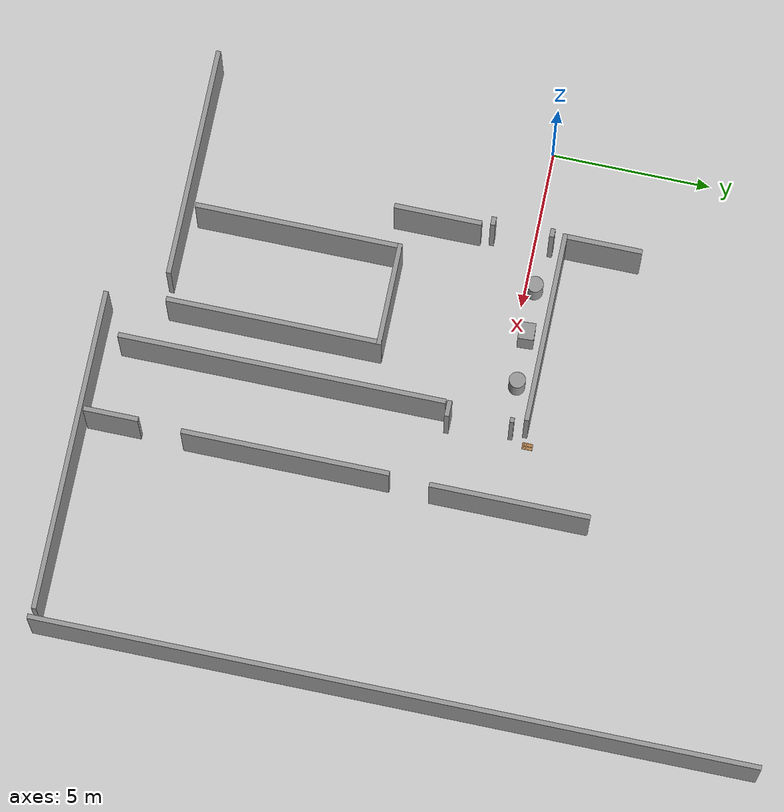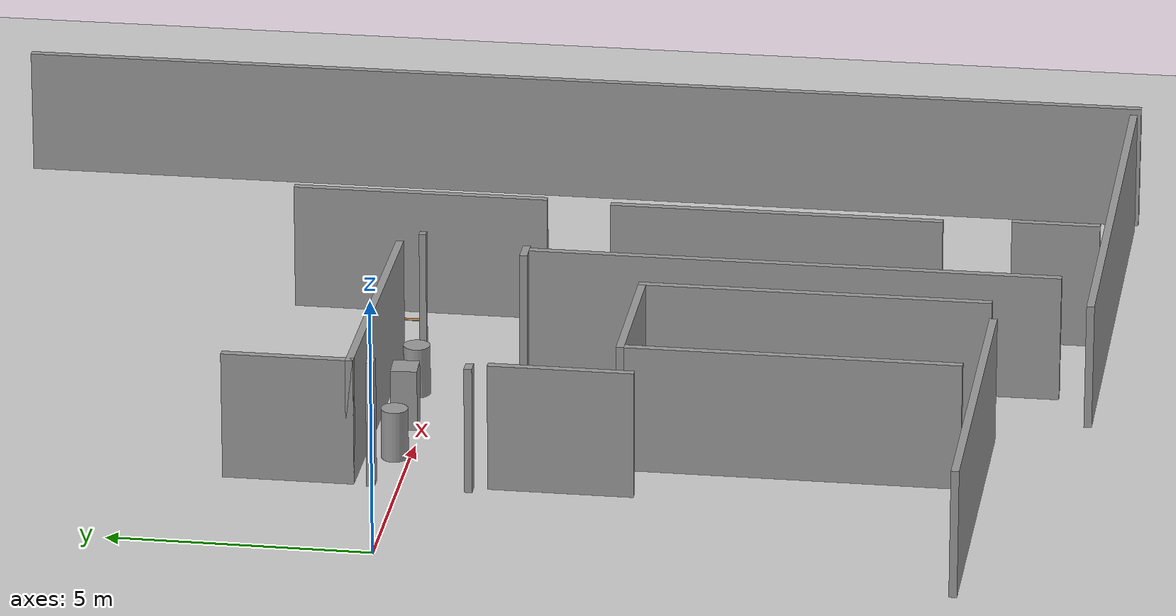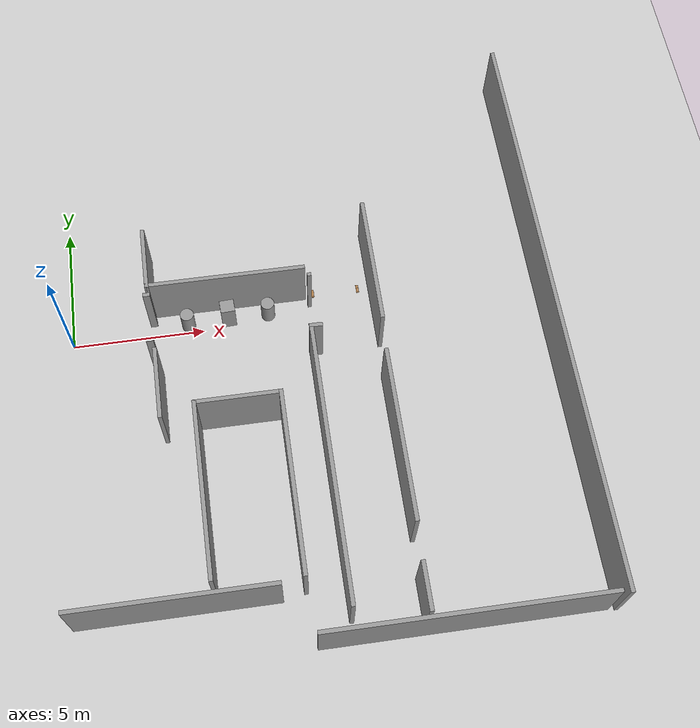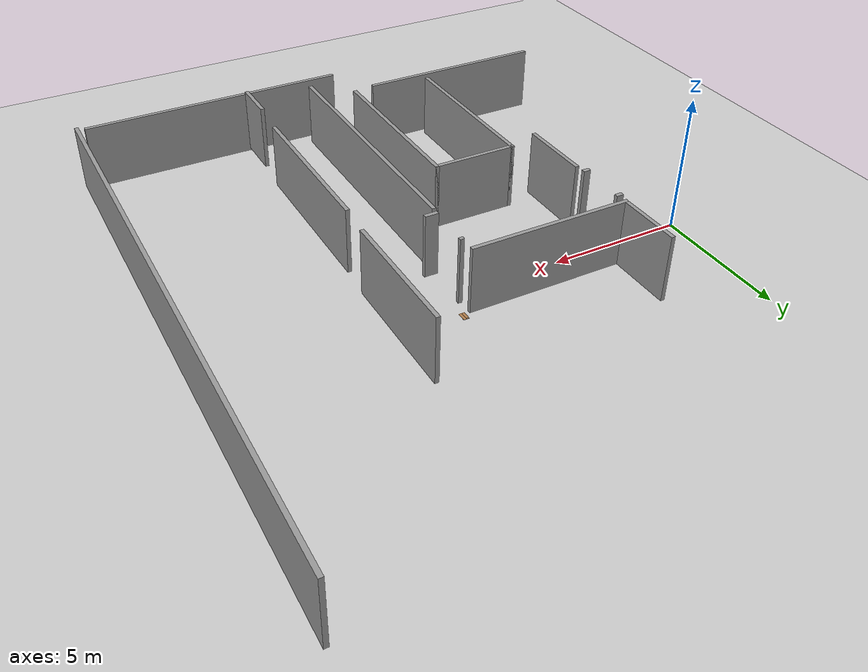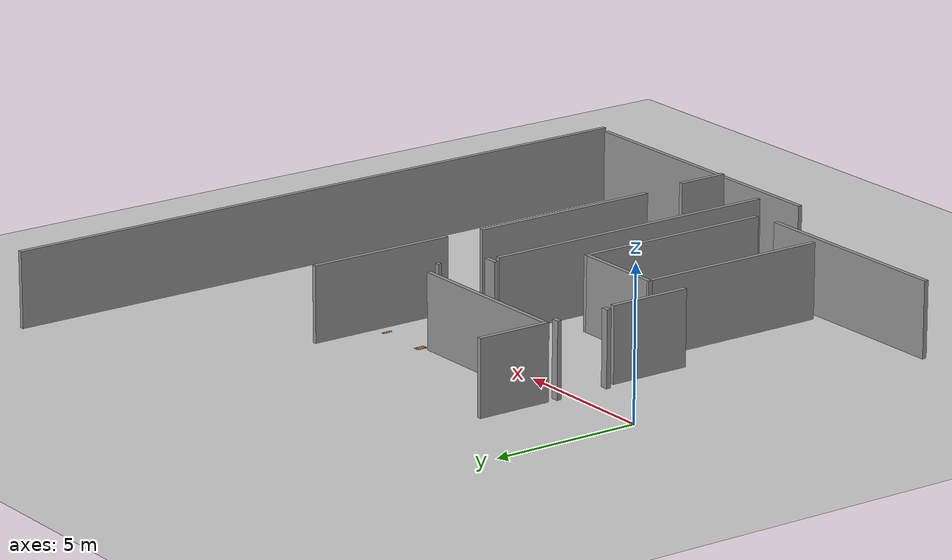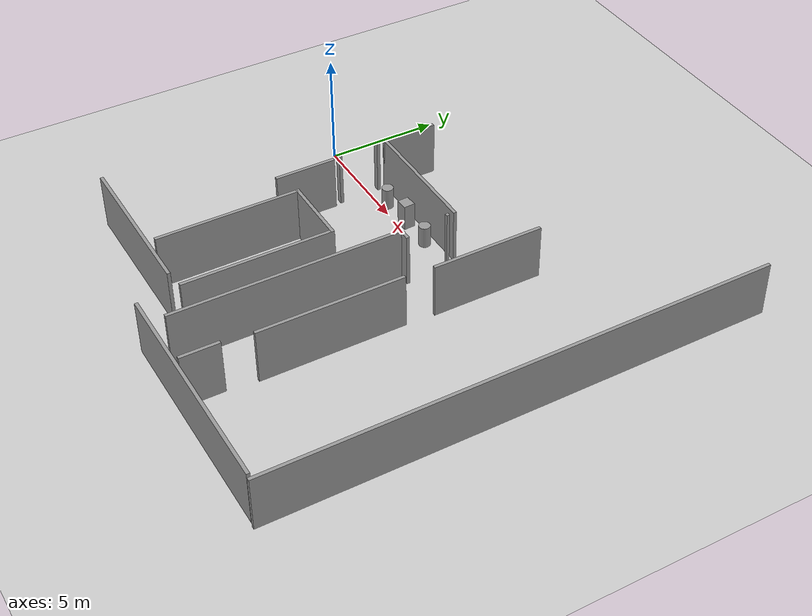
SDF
<sdf version="1.7">
 <world name="default">
  <model name="ground_plane">
   <static>1</static>
   <link name="link">
    <collision name="collision">
     <geometry><plane><normal>0 0 1</normal><size>100 100</size></plane></geometry>
     <surface>
      <contact><collide_bitmask>65535</collide_bitmask></contact>
      <friction><ode><mu>100</mu><mu2>50</mu2></ode></friction>
     </surface>
    </collision>
    <visual name="visual">
     <cast_shadows>0</cast_shadows>
     <geometry><plane><normal>0 0 1</normal><size>100 100</size></plane></geometry>
     <material>
      <script><uri>file://media/materials/scripts/gazebo.material</uri><name>Gazebo/Grey</name></script>
     </material>
    </visual>
   </link>
  </model>
  <model name="wooden_board_clone">
   <link name="base">
    <pose>0 0 0.00523 0 -0 0</pose>
    <inertial>
     <mass>0.2765</mass>
     <inertia>
      <ixx>0.0025148</ixx>
      <ixy>0</ixy>
      <ixz>0</ixz>
      <iyy>0.00024037</iyy>
      <iyz>0</iyz>
      <izz>0.00275013</izz>
     </inertia>
    </inertial>
    <collision name="collision">
     <geometry><box><size>0.1016 0.3302 0.01046</size></box></geometry>
     <surface>
      <contact>
       <poissons_ratio>0.347</poissons_ratio>
       <elastic_modulus>8.8e+09</elastic_modulus>
       <ode><kp>100000</kp><kd>100</kd><max_vel>100</max_vel><min_depth>0.001</min_depth></ode>
      </contact>
      <friction>
       <torsional>
        <coefficient>1</coefficient>
        <use_patch_radius>0</use_patch_radius>
        <surface_radius>0.01</surface_radius>
       </torsional>
      </friction>
     </surface>
    </collision>
    <visual name="visual">
     <geometry><box><size>0.1016 0.3302 0.01046</size></box></geometry>
     <material>
      <script><uri>file://media/materials/scripts/gazebo.material</uri><name>Gazebo/Wood</name></script>
     </material>
    </visual>
    <visual name="tee_nut_1">
     <pose>0 -0.116 0 0 -0 0</pose>
     <geometry><cylinder><radius>0.00635</radius><length>0.0105646</length></cylinder></geometry>
     <material>
      <script><uri>file://media/materials/scripts/gazebo.material</uri><name>Gazebo/Grey</name></script>
     </material>
    </visual>
    <visual name="tee_nut_2">
     <pose>0 -0.038 0 0 -0 0</pose>
     <geometry><cylinder><radius>0.00635</radius><length>0.0105646</length></cylinder></geometry>
     <material>
      <script><uri>file://media/materials/scripts/gazebo.material</uri><name>Gazebo/Grey</name></script>
     </material>
    </visual>
    <visual name="tee_nut_3">
     <pose>0 0.038 0 0 -0 0</pose>
     <geometry><cylinder><radius>0.00635</radius><length>0.0105646</length></cylinder></geometry>
     <material>
      <script><uri>file://media/materials/scripts/gazebo.material</uri><name>Gazebo/Grey</name></script>
     </material>
    </visual>
    <visual name="tee_nut_4">
     <pose>0 0.116 0 0 -0 0</pose>
     <geometry><cylinder><radius>0.00635</radius><length>0.0105646</length></cylinder></geometry>
     <material>
      <script><uri>file://media/materials/scripts/gazebo.material</uri><name>Gazebo/Grey</name></script>
     </material>
    </visual>
   </link>
   <pose>9.26623 1.07105 -0.001007 0 -0 0.002678</pose>
  </model>
  <model name="wooden_board_clone_clone">
   <link name="base">
    <pose>0 0 0.00523 0 -0 0</pose>
    <inertial>
     <mass>0.2765</mass>
     <inertia>
      <ixx>0.0025148</ixx>
      <ixy>0</ixy>
      <ixz>0</ixz>
      <iyy>0.00024037</iyy>
      <iyz>0</iyz>
      <izz>0.00275013</izz>
     </inertia>
    </inertial>
    <collision name="collision">
     <geometry><box><size>0.1016 0.3302 0.01046</size></box></geometry>
     <surface>
      <contact>
       <poissons_ratio>0.347</poissons_ratio>
       <elastic_modulus>8.8e+09</elastic_modulus>
       <ode><kp>100000</kp><kd>100</kd><max_vel>100</max_vel><min_depth>0.001</min_depth></ode>
      </contact>
      <friction>
       <torsional>
        <coefficient>1</coefficient>
        <use_patch_radius>0</use_patch_radius>
        <surface_radius>0.01</surface_radius>
       </torsional>
      </friction>
     </surface>
    </collision>
    <visual name="visual">
     <geometry><box><size>0.1016 0.3302 0.01046</size></box></geometry>
     <material>
      <script><uri>file://media/materials/scripts/gazebo.material</uri><name>Gazebo/Wood</name></script>
     </material>
    </visual>
    <visual name="tee_nut_1">
     <pose>0 -0.116 0 0 -0 0</pose>
     <geometry><cylinder><radius>0.00635</radius><length>0.0105646</length></cylinder></geometry>
     <material>
      <script><uri>file://media/materials/scripts/gazebo.material</uri><name>Gazebo/Grey</name></script>
     </material>
    </visual>
    <visual name="tee_nut_2">
     <pose>0 -0.038 0 0 -0 0</pose>
     <geometry><cylinder><radius>0.00635</radius><length>0.0105646</length></cylinder></geometry>
     <material>
      <script><uri>file://media/materials/scripts/gazebo.material</uri><name>Gazebo/Grey</name></script>
     </material>
    </visual>
    <visual name="tee_nut_3">
     <pose>0 0.038 0 0 -0 0</pose>
     <geometry><cylinder><radius>0.00635</radius><length>0.0105646</length></cylinder></geometry>
     <material>
      <script><uri>file://media/materials/scripts/gazebo.material</uri><name>Gazebo/Grey</name></script>
     </material>
    </visual>
    <visual name="tee_nut_4">
     <pose>0 0.116 0 0 -0 0</pose>
     <geometry><cylinder><radius>0.00635</radius><length>0.0105646</length></cylinder></geometry>
     <material>
      <script><uri>file://media/materials/scripts/gazebo.material</uri><name>Gazebo/Grey</name></script>
     </material>
    </visual>
   </link>
   <pose>9.37039 1.07358 -0.001007 0 -0 0.002678</pose>
  </model>
  <model name="wooden_board_clone_clone_1">
   <link name="base">
    <pose>0 0 0.00523 0 -0 0</pose>
    <inertial>
     <mass>0.2765</mass>
     <inertia>
      <ixx>0.0025148</ixx>
      <ixy>0</ixy>
      <ixz>0</ixz>
      <iyy>0.00024037</iyy>
      <iyz>0</iyz>
      <izz>0.00275013</izz>
     </inertia>
    </inertial>
    <collision name="collision">
     <geometry><box><size>0.1016 0.3302 0.01046</size></box></geometry>
     <surface>
      <contact>
       <poissons_ratio>0.347</poissons_ratio>
       <elastic_modulus>8.8e+09</elastic_modulus>
       <ode><kp>100000</kp><kd>100</kd><max_vel>100</max_vel><min_depth>0.001</min_depth></ode>
      </contact>
      <friction>
       <torsional>
        <coefficient>1</coefficient>
        <use_patch_radius>0</use_patch_radius>
        <surface_radius>0.01</surface_radius>
       </torsional>
      </friction>
     </surface>
    </collision>
    <visual name="visual">
     <geometry><box><size>0.1016 0.3302 0.01046</size></box></geometry>
     <material>
      <script><uri>file://media/materials/scripts/gazebo.material</uri><name>Gazebo/Wood</name></script>
     </material>
    </visual>
    <visual name="tee_nut_1">
     <pose>0 -0.116 0 0 -0 0</pose>
     <geometry><cylinder><radius>0.00635</radius><length>0.0105646</length></cylinder></geometry>
     <material>
      <script><uri>file://media/materials/scripts/gazebo.material</uri><name>Gazebo/Grey</name></script>
     </material>
    </visual>
    <visual name="tee_nut_2">
     <pose>0 -0.038 0 0 -0 0</pose>
     <geometry><cylinder><radius>0.00635</radius><length>0.0105646</length></cylinder></geometry>
     <material>
      <script><uri>file://media/materials/scripts/gazebo.material</uri><name>Gazebo/Grey</name></script>
     </material>
    </visual>
    <visual name="tee_nut_3">
     <pose>0 0.038 0 0 -0 0</pose>
     <geometry><cylinder><radius>0.00635</radius><length>0.0105646</length></cylinder></geometry>
     <material>
      <script><uri>file://media/materials/scripts/gazebo.material</uri><name>Gazebo/Grey</name></script>
     </material>
    </visual>
    <visual name="tee_nut_4">
     <pose>0 0.116 0 0 -0 0</pose>
     <geometry><cylinder><radius>0.00635</radius><length>0.0105646</length></cylinder></geometry>
     <material>
      <script><uri>file://media/materials/scripts/gazebo.material</uri><name>Gazebo/Grey</name></script>
     </material>
    </visual>
   </link>
   <pose>11.1431 1.04865 -0.001007 0 -0 0.002631</pose>
  </model>
  <model name="unit_box_clone_clone">
   <pose>5.99774 0.350947 0.603198 -2e-06 5e-06 0.053403</pose>
   <link name="link">
    <inertial>
     <mass>1</mass>
     <inertia>
      <ixx>0.166667</ixx>
      <ixy>0</ixy>
      <ixz>0</ixz>
      <iyy>0.166667</iyy>
      <iyz>0</iyz>
      <izz>0.166667</izz>
     </inertia>
    </inertial>
    <collision name="collision"><geometry><box><size>0.544182 0.503784 1.2064</size></box></geometry></collision>
    <visual name="visual">
     <geometry><box><size>0.544182 0.503784 1.2064</size></box></geometry>
     <material>
      <script><name>Gazebo/Grey</name><uri>file://media/materials/scripts/gazebo.material</uri></script>
     </material>
    </visual>
   </link>
  </model>
  <model name="unit_cylinder_0">
   <pose>4.43882 0.303632 0.499992 -1e-06 -1e-06 1e-06</pose>
   <link name="link">
    <inertial>
     <mass>1</mass>
     <inertia><ixx>0.145833</ixx><ixy>0</ixy><ixz>0</ixz><iyy>0.145833</iyy><iyz>0</iyz><izz>0.125</izz></inertia>
    </inertial>
    <collision name="collision">
     <geometry><cylinder><radius>0.25828</radius><length>1</length></cylinder></geometry>
    </collision>
    <visual name="visual">
     <geometry><cylinder><radius>0.25828</radius><length>1</length></cylinder></geometry>
     <material>
      <script><name>Gazebo/Grey</name><uri>file://media/materials/scripts/gazebo.material</uri></script>
     </material>
    </visual>
   </link>
  </model>
  <model name="unit_cylinder_0_clone">
   <pose>7.53615 0.370453 0.499992 -1e-06 -1e-06 1e-06</pose>
   <link name="link">
    <inertial>
     <mass>1</mass>
     <inertia><ixx>0.145833</ixx><ixy>0</ixy><ixz>0</ixz><iyy>0.145833</iyy><iyz>0</iyz><izz>0.125</izz></inertia>
    </inertial>
    <collision name="collision">
     <geometry><cylinder><radius>0.25828</radius><length>1</length></cylinder></geometry>
    </collision>
    <visual name="visual">
     <geometry><cylinder><radius>0.25828</radius><length>1</length></cylinder></geometry>
     <material>
      <script><name>Gazebo/Grey</name><uri>file://media/materials/scripts/gazebo.material</uri></script>
     </material>
    </visual>
   </link>
  </model>
  <model name="rastech_map_02">
   <link name="Wall_21">
    <pose>-0.450715 -2.39462 0 0 0 -1.5708</pose>
    <visual name="Wall_21_Visual">
     <pose>0 0 1.25 0 -0 0</pose>
     <geometry><box><size>2.75 0.15 2.5</size></box></geometry>
     <material>
      <script><uri>file://media/materials/scripts/gazebo.material</uri><name>Gazebo/Grey</name></script>
      <ambient>1 1 1 1</ambient>
      <shader type="pixel"/>
     </material>
     <meta><layer>0</layer></meta>
    </visual>
    <collision name="Wall_21_Collision">
     <pose>0 0 1.25 0 -0 0</pose>
     <geometry><box><size>2.75 0.15 2.5</size></box></geometry>
     <surface>
      <friction>
       <ode><mu>1</mu><mu2>1</mu2><fdir1>0 0 0</fdir1><slip1>0</slip1><slip2>0</slip2></ode>
       <torsional>
        <coefficient>1</coefficient>
        <patch_radius>0</patch_radius>
        <surface_radius>0</surface_radius>
        <use_patch_radius>1</use_patch_radius>
        <ode><slip>0</slip></ode>
       </torsional>
      </friction>
      <bounce><restitution_coefficient>0</restitution_coefficient><threshold>1e+06</threshold></bounce>
      <contact>
       <collide_without_contact>0</collide_without_contact>
       <collide_without_contact_bitmask>1</collide_without_contact_bitmask>
       <collide_bitmask>1</collide_bitmask>
       <ode>
        <soft_cfm>0</soft_cfm>
        <soft_erp>0.2</soft_erp>
        <kp>1e+13</kp>
        <kd>1</kd>
        <max_vel>0.01</max_vel>
        <min_depth>0</min_depth>
       </ode>
       <bullet>
        <split_impulse>1</split_impulse>
        <split_impulse_penetration_threshold>-0.01</split_impulse_penetration_threshold>
        <soft_cfm>0</soft_cfm>
        <soft_erp>0.2</soft_erp>
        <kp>1e+13</kp>
        <kd>1</kd>
       </bullet>
      </contact>
     </surface>
    </collision>
   </link>
   <link name="Wall_23">
    <pose>-0.566645 2.73832 0 0 0 -1.5708</pose>
    <visual name="Wall_23_Visual">
     <pose>0 0 1.25 0 -0 0</pose>
     <geometry><box><size>2.5 0.15 2.5</size></box></geometry>
     <material>
      <script><uri>file://media/materials/scripts/gazebo.material</uri><name>Gazebo/Grey</name></script>
      <ambient>1 1 1 1</ambient>
      <shader type="pixel"/>
     </material>
     <meta><layer>0</layer></meta>
    </visual>
    <collision name="Wall_23_Collision">
     <pose>0 0 1.25 0 -0 0</pose>
     <geometry><box><size>2.5 0.15 2.5</size></box></geometry>
     <surface>
      <friction>
       <ode><mu>1</mu><mu2>1</mu2><fdir1>0 0 0</fdir1><slip1>0</slip1><slip2>0</slip2></ode>
       <torsional>
        <coefficient>1</coefficient>
        <patch_radius>0</patch_radius>
        <surface_radius>0</surface_radius>
        <use_patch_radius>1</use_patch_radius>
        <ode><slip>0</slip></ode>
       </torsional>
      </friction>
      <bounce><restitution_coefficient>0</restitution_coefficient><threshold>1e+06</threshold></bounce>
      <contact>
       <collide_without_contact>0</collide_without_contact>
       <collide_without_contact_bitmask>1</collide_without_contact_bitmask>
       <collide_bitmask>1</collide_bitmask>
       <ode>
        <soft_cfm>0</soft_cfm>
        <soft_erp>0.2</soft_erp>
        <kp>1e+13</kp>
        <kd>1</kd>
        <max_vel>0.01</max_vel>
        <min_depth>0</min_depth>
       </ode>
       <bullet>
        <split_impulse>1</split_impulse>
        <split_impulse_penetration_threshold>-0.01</split_impulse_penetration_threshold>
        <soft_cfm>0</soft_cfm>
        <soft_erp>0.2</soft_erp>
        <kp>1e+13</kp>
        <kd>1</kd>
       </bullet>
      </contact>
     </surface>
    </collision>
   </link>
   <link name="Wall_25">
    <pose>2.35835 1.56332 0 0 -0 0</pose>
    <visual name="Wall_25_Visual">
     <pose>0 0 1.25 0 -0 0</pose>
     <geometry><box><size>6 0.15 2.5</size></box></geometry>
     <material>
      <script><uri>file://media/materials/scripts/gazebo.material</uri><name>Gazebo/Grey</name></script>
      <ambient>1 1 1 1</ambient>
      <shader type="pixel"/>
     </material>
     <meta><layer>0</layer></meta>
    </visual>
    <collision name="Wall_25_Collision">
     <pose>0 0 1.25 0 -0 0</pose>
     <geometry><box><size>6 0.15 2.5</size></box></geometry>
     <surface>
      <friction>
       <ode><mu>1</mu><mu2>1</mu2><fdir1>0 0 0</fdir1><slip1>0</slip1><slip2>0</slip2></ode>
       <torsional>
        <coefficient>1</coefficient>
        <patch_radius>0</patch_radius>
        <surface_radius>0</surface_radius>
        <use_patch_radius>1</use_patch_radius>
        <ode><slip>0</slip></ode>
       </torsional>
      </friction>
      <bounce><restitution_coefficient>0</restitution_coefficient><threshold>1e+06</threshold></bounce>
      <contact>
       <collide_without_contact>0</collide_without_contact>
       <collide_without_contact_bitmask>1</collide_without_contact_bitmask>
       <collide_bitmask>1</collide_bitmask>
       <ode>
        <soft_cfm>0</soft_cfm>
        <soft_erp>0.2</soft_erp>
        <kp>1e+13</kp>
        <kd>1</kd>
        <max_vel>0.01</max_vel>
        <min_depth>0</min_depth>
       </ode>
       <bullet>
        <split_impulse>1</split_impulse>
        <split_impulse_penetration_threshold>-0.01</split_impulse_penetration_threshold>
        <soft_cfm>0</soft_cfm>
        <soft_erp>0.2</soft_erp>
        <kp>1e+13</kp>
        <kd>1</kd>
       </bullet>
      </contact>
     </surface>
    </collision>
   </link>
   <link name="Wall_27_clone_8">
    <pose>-0.593577 1.16207 0.015398 0 -0 3.14159</pose>
    <inertial>
     <inertia><ixx>0</ixx><ixy>0</ixy><ixz>0</ixz><iyy>0</iyy><iyz>0</iyz><izz>0</izz></inertia>
     <mass>0</mass>
    </inertial>
    <visual name="Wall_27_Visual">
     <pose>0 0 1.25 0 -0 0</pose>
     <geometry><box><size>0.265883 0.15 2.5</size></box></geometry>
     <material>
      <script><uri>file://media/materials/scripts/gazebo.material</uri><name>Gazebo/Grey</name></script>
      <ambient>1 1 1 1</ambient>
      <shader type="pixel"/>
     </material>
     <meta><layer>0</layer></meta>
    </visual>
    <collision name="Wall_27_Collision">
     <pose>0 0 1.25 0 -0 0</pose>
     <geometry><box><size>0.265883 0.15 2.5</size></box></geometry>
     <surface>
      <friction>
       <ode><mu>1</mu><mu2>1</mu2><fdir1>0 0 0</fdir1><slip1>0</slip1><slip2>0</slip2></ode>
       <torsional>
        <coefficient>1</coefficient>
        <patch_radius>0</patch_radius>
        <surface_radius>0</surface_radius>
        <use_patch_radius>1</use_patch_radius>
        <ode><slip>0</slip></ode>
       </torsional>
      </friction>
      <bounce><restitution_coefficient>0</restitution_coefficient><threshold>1e+06</threshold></bounce>
      <contact>
       <collide_without_contact>0</collide_without_contact>
       <collide_without_contact_bitmask>1</collide_without_contact_bitmask>
       <collide_bitmask>1</collide_bitmask>
       <ode>
        <soft_cfm>0</soft_cfm>
        <soft_erp>0.2</soft_erp>
        <kp>1e+13</kp>
        <kd>1</kd>
        <max_vel>0.01</max_vel>
        <min_depth>0</min_depth>
       </ode>
       <bullet>
        <split_impulse>1</split_impulse>
        <split_impulse_penetration_threshold>-0.01</split_impulse_penetration_threshold>
        <soft_cfm>0</soft_cfm>
        <soft_erp>0.2</soft_erp>
        <kp>1e+13</kp>
        <kd>1</kd>
       </bullet>
      </contact>
     </surface>
    </collision>
   </link>
   <link name="Wall_27_clone_9">
    <pose>-0.591315 -0.686141 0 0 -0 3.14159</pose>
    <inertial>
     <inertia><ixx>0</ixx><ixy>0</ixy><ixz>0</ixz><iyy>0</iyy><iyz>0</iyz><izz>0</izz></inertia>
     <mass>0</mass>
    </inertial>
    <visual name="Wall_27_Visual">
     <pose>0 0 1.25 0 -0 0</pose>
     <geometry><box><size>0.265883 0.15 2.5</size></box></geometry>
     <material>
      <script><uri>file://media/materials/scripts/gazebo.material</uri><name>Gazebo/Grey</name></script>
      <ambient>1 1 1 1</ambient>
      <shader type="pixel"/>
     </material>
     <meta><layer>0</layer></meta>
    </visual>
    <collision name="Wall_27_Collision">
     <pose>0 0 1.25 0 -0 0</pose>
     <geometry><box><size>0.265883 0.15 2.5</size></box></geometry>
     <surface>
      <friction>
       <ode><mu>1</mu><mu2>1</mu2><fdir1>0 0 0</fdir1><slip1>0</slip1><slip2>0</slip2></ode>
       <torsional>
        <coefficient>1</coefficient>
        <patch_radius>0</patch_radius>
        <surface_radius>0</surface_radius>
        <use_patch_radius>1</use_patch_radius>
        <ode><slip>0</slip></ode>
       </torsional>
      </friction>
      <bounce><restitution_coefficient>0</restitution_coefficient><threshold>1e+06</threshold></bounce>
      <contact>
       <collide_without_contact>0</collide_without_contact>
       <collide_without_contact_bitmask>1</collide_without_contact_bitmask>
       <collide_bitmask>1</collide_bitmask>
       <ode>
        <soft_cfm>0</soft_cfm>
        <soft_erp>0.2</soft_erp>
        <kp>1e+13</kp>
        <kd>1</kd>
        <max_vel>0.01</max_vel>
        <min_depth>0</min_depth>
       </ode>
       <bullet>
        <split_impulse>1</split_impulse>
        <split_impulse_penetration_threshold>-0.01</split_impulse_penetration_threshold>
        <soft_cfm>0</soft_cfm>
        <soft_erp>0.2</soft_erp>
        <kp>1e+13</kp>
        <kd>1</kd>
       </bullet>
      </contact>
     </surface>
    </collision>
   </link>
   <link name="Wall_37">
    <pose>14.3842 -0.706008 0 0 0 -1.5708</pose>
    <inertial>
     <inertia><ixx>0</ixx><ixy>0</ixy><ixz>0</ixz><iyy>0</iyy><iyz>0</iyz><izz>0</izz></inertia>
     <mass>0</mass>
    </inertial>
    <visual name="Wall_37_Visual">
     <pose>0 0 1.25 0 -0 0</pose>
     <geometry><box><size>22.5952 0.15 2.5</size></box></geometry>
     <material>
      <script><uri>file://media/materials/scripts/gazebo.material</uri><name>Gazebo/Grey</name></script>
      <ambient>1 1 1 1</ambient>
      <shader type="pixel"/>
     </material>
     <meta><layer>0</layer></meta>
    </visual>
    <collision name="Wall_37_Collision">
     <pose>0 0 1.25 0 -0 0</pose>
     <geometry><box><size>22.5952 0.15 2.5</size></box></geometry>
     <surface>
      <friction>
       <ode><mu>1</mu><mu2>1</mu2><fdir1>0 0 0</fdir1><slip1>0</slip1><slip2>0</slip2></ode>
       <torsional>
        <coefficient>1</coefficient>
        <patch_radius>0</patch_radius>
        <surface_radius>0</surface_radius>
        <use_patch_radius>1</use_patch_radius>
        <ode><slip>0</slip></ode>
       </torsional>
      </friction>
      <bounce><restitution_coefficient>0</restitution_coefficient><threshold>1e+06</threshold></bounce>
      <contact>
       <collide_without_contact>0</collide_without_contact>
       <collide_without_contact_bitmask>1</collide_without_contact_bitmask>
       <collide_bitmask>1</collide_bitmask>
       <ode>
        <soft_cfm>0</soft_cfm>
        <soft_erp>0.2</soft_erp>
        <kp>1e+13</kp>
        <kd>1</kd>
        <max_vel>0.01</max_vel>
        <min_depth>0</min_depth>
       </ode>
       <bullet>
        <split_impulse>1</split_impulse>
        <split_impulse_penetration_threshold>-0.01</split_impulse_penetration_threshold>
        <soft_cfm>0</soft_cfm>
        <soft_erp>0.2</soft_erp>
        <kp>1e+13</kp>
        <kd>1</kd>
       </bullet>
      </contact>
     </surface>
    </collision>
   </link>
   <link name="Wall_48">
    <pose>7.91687 1.56088 0 0 0 -1.5708</pose>
    <visual name="Wall_48_Visual">
     <pose>0 0 1.25 0 -0 0</pose>
     <geometry><box><size>5 0.15 2.5</size></box></geometry>
     <material>
      <script><uri>file://media/materials/scripts/gazebo.material</uri><name>Gazebo/Grey</name></script>
      <ambient>1 1 1 1</ambient>
      <shader type="pixel"/>
     </material>
     <meta><layer>0</layer></meta>
    </visual>
    <collision name="Wall_48_Collision">
     <pose>0 0 1.25 0 -0 0</pose>
     <geometry><box><size>5 0.15 2.5</size></box></geometry>
     <surface>
      <friction>
       <ode><mu>1</mu><mu2>1</mu2><fdir1>0 0 0</fdir1><slip1>0</slip1><slip2>0</slip2></ode>
       <torsional>
        <coefficient>1</coefficient>
        <patch_radius>0</patch_radius>
        <surface_radius>0</surface_radius>
        <use_patch_radius>1</use_patch_radius>
        <ode><slip>0</slip></ode>
       </torsional>
      </friction>
      <bounce><restitution_coefficient>0</restitution_coefficient><threshold>1e+06</threshold></bounce>
      <contact>
       <collide_without_contact>0</collide_without_contact>
       <collide_without_contact_bitmask>1</collide_without_contact_bitmask>
       <collide_bitmask>1</collide_bitmask>
       <ode>
        <soft_cfm>0</soft_cfm>
        <soft_erp>0.2</soft_erp>
        <kp>1e+13</kp>
        <kd>1</kd>
        <max_vel>0.01</max_vel>
        <min_depth>0</min_depth>
       </ode>
       <bullet>
        <split_impulse>1</split_impulse>
        <split_impulse_penetration_threshold>-0.01</split_impulse_penetration_threshold>
        <soft_cfm>0</soft_cfm>
        <soft_erp>0.2</soft_erp>
        <kp>1e+13</kp>
        <kd>1</kd>
       </bullet>
      </contact>
     </surface>
    </collision>
   </link>
   <link name="Wall_48_clone">
    <pose>7.7712 -10.8821 0.102942 0 0 -1.5708</pose>
    <inertial>
     <inertia><ixx>0</ixx><ixy>0</ixy><ixz>0</ixz><iyy>0</iyy><iyz>0</iyz><izz>0</izz></inertia>
     <mass>0</mass>
    </inertial>
    <visual name="Wall_48_Visual">
     <pose>0 0 1.25 0 -0 0</pose>
     <geometry><box><size>1.7096 0.15 2.5</size></box></geometry>
     <material>
      <script><uri>file://media/materials/scripts/gazebo.material</uri><name>Gazebo/Grey</name></script>
      <ambient>1 1 1 1</ambient>
      <shader type="pixel"/>
     </material>
     <meta><layer>0</layer></meta>
    </visual>
    <collision name="Wall_48_Collision">
     <pose>0 0 1.25 0 -0 0</pose>
     <geometry><box><size>1.7096 0.15 2.5</size></box></geometry>
     <surface>
      <friction>
       <ode><mu>1</mu><mu2>1</mu2><fdir1>0 0 0</fdir1><slip1>0</slip1><slip2>0</slip2></ode>
       <torsional>
        <coefficient>1</coefficient>
        <patch_radius>0</patch_radius>
        <surface_radius>0</surface_radius>
        <use_patch_radius>1</use_patch_radius>
        <ode><slip>0</slip></ode>
       </torsional>
      </friction>
      <bounce><restitution_coefficient>0</restitution_coefficient><threshold>1e+06</threshold></bounce>
      <contact>
       <collide_without_contact>0</collide_without_contact>
       <collide_without_contact_bitmask>1</collide_without_contact_bitmask>
       <collide_bitmask>1</collide_bitmask>
       <ode>
        <soft_cfm>0</soft_cfm>
        <soft_erp>0.2</soft_erp>
        <kp>1e+13</kp>
        <kd>1</kd>
        <max_vel>0.01</max_vel>
        <min_depth>0</min_depth>
       </ode>
       <bullet>
        <split_impulse>1</split_impulse>
        <split_impulse_penetration_threshold>-0.01</split_impulse_penetration_threshold>
        <soft_cfm>0</soft_cfm>
        <soft_erp>0.2</soft_erp>
        <kp>1e+13</kp>
        <kd>1</kd>
       </bullet>
      </contact>
     </surface>
    </collision>
   </link>
   <link name="Wall_50">
    <pose>7.83437 -5.43907 0 0 0 -1.5708</pose>
    <inertial>
     <inertia><ixx>0</ixx><ixy>0</ixy><ixz>0</ixz><iyy>0</iyy><iyz>0</iyz><izz>0</izz></inertia>
     <mass>0</mass>
    </inertial>
    <visual name="Wall_50_Visual">
     <pose>0 0 1.25 0 -0 0</pose>
     <geometry><box><size>6.48855 0.15 2.5</size></box></geometry>
     <material>
      <script><uri>file://media/materials/scripts/gazebo.material</uri><name>Gazebo/Grey</name></script>
      <ambient>1 1 1 1</ambient>
      <shader type="pixel"/>
     </material>
     <meta><layer>0</layer></meta>
    </visual>
    <collision name="Wall_50_Collision">
     <pose>0 0 1.25 0 -0 0</pose>
     <geometry><box><size>6.48855 0.15 2.5</size></box></geometry>
     <surface>
      <friction>
       <ode><mu>1</mu><mu2>1</mu2><fdir1>0 0 0</fdir1><slip1>0</slip1><slip2>0</slip2></ode>
       <torsional>
        <coefficient>1</coefficient>
        <patch_radius>0</patch_radius>
        <surface_radius>0</surface_radius>
        <use_patch_radius>1</use_patch_radius>
        <ode><slip>0</slip></ode>
       </torsional>
      </friction>
      <bounce><restitution_coefficient>0</restitution_coefficient><threshold>1e+06</threshold></bounce>
      <contact>
       <collide_without_contact>0</collide_without_contact>
       <collide_without_contact_bitmask>1</collide_without_contact_bitmask>
       <collide_bitmask>1</collide_bitmask>
       <ode>
        <soft_cfm>0</soft_cfm>
        <soft_erp>0.2</soft_erp>
        <kp>1e+13</kp>
        <kd>1</kd>
        <max_vel>0.01</max_vel>
        <min_depth>0</min_depth>
       </ode>
       <bullet>
        <split_impulse>1</split_impulse>
        <split_impulse_penetration_threshold>-0.01</split_impulse_penetration_threshold>
        <soft_cfm>0</soft_cfm>
        <soft_erp>0.2</soft_erp>
        <kp>1e+13</kp>
        <kd>1</kd>
       </bullet>
      </contact>
     </surface>
    </collision>
   </link>
   <link name="Wall_52">
    <pose>2.32678 -3.34297 0 0 -0 0</pose>
    <visual name="Wall_52_Visual">
     <pose>0 0 1.25 0 -0 0</pose>
     <geometry><box><size>3.25 0.15 2.5</size></box></geometry>
     <material>
      <script><uri>file://media/materials/scripts/gazebo.material</uri><name>Gazebo/Grey</name></script>
      <ambient>1 1 1 1</ambient>
      <shader type="pixel"/>
     </material>
     <meta><layer>0</layer></meta>
    </visual>
    <collision name="Wall_52_Collision">
     <pose>0 0 1.25 0 -0 0</pose>
     <geometry><box><size>3.25 0.15 2.5</size></box></geometry>
     <surface>
      <friction>
       <ode><mu>1</mu><mu2>1</mu2><fdir1>0 0 0</fdir1><slip1>0</slip1><slip2>0</slip2></ode>
       <torsional>
        <coefficient>1</coefficient>
        <patch_radius>0</patch_radius>
        <surface_radius>0</surface_radius>
        <use_patch_radius>1</use_patch_radius>
        <ode><slip>0</slip></ode>
       </torsional>
      </friction>
      <bounce><restitution_coefficient>0</restitution_coefficient><threshold>1e+06</threshold></bounce>
      <contact>
       <collide_without_contact>0</collide_without_contact>
       <collide_without_contact_bitmask>1</collide_without_contact_bitmask>
       <collide_bitmask>1</collide_bitmask>
       <ode>
        <soft_cfm>0</soft_cfm>
        <soft_erp>0.2</soft_erp>
        <kp>1e+13</kp>
        <kd>1</kd>
        <max_vel>0.01</max_vel>
        <min_depth>0</min_depth>
       </ode>
       <bullet>
        <split_impulse>1</split_impulse>
        <split_impulse_penetration_threshold>-0.01</split_impulse_penetration_threshold>
        <soft_cfm>0</soft_cfm>
        <soft_erp>0.2</soft_erp>
        <kp>1e+13</kp>
        <kd>1</kd>
       </bullet>
      </contact>
     </surface>
    </collision>
   </link>
   <link name="Wall_55">
    <pose>5.28222 -6.08886 0 0 0 -1.5708</pose>
    <visual name="Wall_55_Visual">
     <pose>0 0 1.25 0 -0 0</pose>
     <geometry><box><size>10.25 0.15 2.5</size></box></geometry>
     <material>
      <script><uri>file://media/materials/scripts/gazebo.material</uri><name>Gazebo/Grey</name></script>
      <ambient>1 1 1 1</ambient>
      <shader type="pixel"/>
     </material>
     <meta><layer>0</layer></meta>
    </visual>
    <collision name="Wall_55_Collision">
     <pose>0 0 1.25 0 -0 0</pose>
     <geometry><box><size>10.25 0.15 2.5</size></box></geometry>
     <surface>
      <friction>
       <ode><mu>1</mu><mu2>1</mu2><fdir1>0 0 0</fdir1><slip1>0</slip1><slip2>0</slip2></ode>
       <torsional>
        <coefficient>1</coefficient>
        <patch_radius>0</patch_radius>
        <surface_radius>0</surface_radius>
        <use_patch_radius>1</use_patch_radius>
        <ode><slip>0</slip></ode>
       </torsional>
      </friction>
      <bounce><restitution_coefficient>0</restitution_coefficient><threshold>1e+06</threshold></bounce>
      <contact>
       <collide_without_contact>0</collide_without_contact>
       <collide_without_contact_bitmask>1</collide_without_contact_bitmask>
       <collide_bitmask>1</collide_bitmask>
       <ode>
        <soft_cfm>0</soft_cfm>
        <soft_erp>0.2</soft_erp>
        <kp>1e+13</kp>
        <kd>1</kd>
        <max_vel>0.01</max_vel>
        <min_depth>0</min_depth>
       </ode>
       <bullet>
        <split_impulse>1</split_impulse>
        <split_impulse_penetration_threshold>-0.01</split_impulse_penetration_threshold>
        <soft_cfm>0</soft_cfm>
        <soft_erp>0.2</soft_erp>
        <kp>1e+13</kp>
        <kd>1</kd>
       </bullet>
      </contact>
     </surface>
    </collision>
   </link>
   <link name="Wall_57">
    <pose>0.776782 -6.51797 0 0 0 -1.5708</pose>
    <visual name="Wall_57_Visual">
     <pose>0 0 1.25 0 -0 0</pose>
     <geometry><box><size>6.5 0.15 2.5</size></box></geometry>
     <material>
      <script><uri>file://media/materials/scripts/gazebo.material</uri><name>Gazebo/Grey</name></script>
      <ambient>1 1 1 1</ambient>
      <shader type="pixel"/>
     </material>
     <meta><layer>0</layer></meta>
    </visual>
    <collision name="Wall_57_Collision">
     <pose>0 0 1.25 0 -0 0</pose>
     <geometry><box><size>6.5 0.15 2.5</size></box></geometry>
     <surface>
      <friction>
       <ode><mu>1</mu><mu2>1</mu2><fdir1>0 0 0</fdir1><slip1>0</slip1><slip2>0</slip2></ode>
       <torsional>
        <coefficient>1</coefficient>
        <patch_radius>0</patch_radius>
        <surface_radius>0</surface_radius>
        <use_patch_radius>1</use_patch_radius>
        <ode><slip>0</slip></ode>
       </torsional>
      </friction>
      <bounce><restitution_coefficient>0</restitution_coefficient><threshold>1e+06</threshold></bounce>
      <contact>
       <collide_without_contact>0</collide_without_contact>
       <collide_without_contact_bitmask>1</collide_without_contact_bitmask>
       <collide_bitmask>1</collide_bitmask>
       <ode>
        <soft_cfm>0</soft_cfm>
        <soft_erp>0.2</soft_erp>
        <kp>1e+13</kp>
        <kd>1</kd>
        <max_vel>0.01</max_vel>
        <min_depth>0</min_depth>
       </ode>
       <bullet>
        <split_impulse>1</split_impulse>
        <split_impulse_penetration_threshold>-0.01</split_impulse_penetration_threshold>
        <soft_cfm>0</soft_cfm>
        <soft_erp>0.2</soft_erp>
        <kp>1e+13</kp>
        <kd>1</kd>
       </bullet>
      </contact>
     </surface>
    </collision>
   </link>
   <link name="Wall_59">
    <pose>3.87678 -6.64297 0 0 0 -1.5708</pose>
    <visual name="Wall_59_Visual">
     <pose>0 0 1.25 0 -0 0</pose>
     <geometry><box><size>6.75 0.15 2.5</size></box></geometry>
     <material>
      <script><uri>file://media/materials/scripts/gazebo.material</uri><name>Gazebo/Grey</name></script>
      <ambient>1 1 1 1</ambient>
      <shader type="pixel"/>
     </material>
     <meta><layer>0</layer></meta>
    </visual>
    <collision name="Wall_59_Collision">
     <pose>0 0 1.25 0 -0 0</pose>
     <geometry><box><size>6.75 0.15 2.5</size></box></geometry>
     <surface>
      <friction>
       <ode><mu>1</mu><mu2>1</mu2><fdir1>0 0 0</fdir1><slip1>0</slip1><slip2>0</slip2></ode>
       <torsional>
        <coefficient>1</coefficient>
        <patch_radius>0</patch_radius>
        <surface_radius>0</surface_radius>
        <use_patch_radius>1</use_patch_radius>
        <ode><slip>0</slip></ode>
       </torsional>
      </friction>
      <bounce><restitution_coefficient>0</restitution_coefficient><threshold>1e+06</threshold></bounce>
      <contact>
       <collide_without_contact>0</collide_without_contact>
       <collide_without_contact_bitmask>1</collide_without_contact_bitmask>
       <collide_bitmask>1</collide_bitmask>
       <ode>
        <soft_cfm>0</soft_cfm>
        <soft_erp>0.2</soft_erp>
        <kp>1e+13</kp>
        <kd>1</kd>
        <max_vel>0.01</max_vel>
        <min_depth>0</min_depth>
       </ode>
       <bullet>
        <split_impulse>1</split_impulse>
        <split_impulse_penetration_threshold>-0.01</split_impulse_penetration_threshold>
        <soft_cfm>0</soft_cfm>
        <soft_erp>0.2</soft_erp>
        <kp>1e+13</kp>
        <kd>1</kd>
       </bullet>
      </contact>
     </surface>
    </collision>
   </link>
   <link name="Wall_64_clone">
    <pose>-0.556729 -10.1194 0 0 -0 0</pose>
    <visual name="Wall_64_Visual">
     <pose>0 0 1.25 0 -0 0</pose>
     <geometry><box><size>7.25 0.15 2.5</size></box></geometry>
     <material>
      <script><uri>file://media/materials/scripts/gazebo.material</uri><name>Gazebo/Grey</name></script>
      <ambient>1 1 1 1</ambient>
      <shader type="pixel"/>
     </material>
     <meta><layer>0</layer></meta>
    </visual>
    <collision name="Wall_64_Collision">
     <pose>0 0 1.25 0 -0 0</pose>
     <geometry><box><size>7.25 0.15 2.5</size></box></geometry>
     <surface>
      <friction>
       <ode><mu>1</mu><mu2>1</mu2><fdir1>0 0 0</fdir1><slip1>0</slip1><slip2>0</slip2></ode>
       <torsional>
        <coefficient>1</coefficient>
        <patch_radius>0</patch_radius>
        <surface_radius>0</surface_radius>
        <use_patch_radius>1</use_patch_radius>
        <ode><slip>0</slip></ode>
       </torsional>
      </friction>
      <bounce><restitution_coefficient>0</restitution_coefficient><threshold>1e+06</threshold></bounce>
      <contact>
       <collide_without_contact>0</collide_without_contact>
       <collide_without_contact_bitmask>1</collide_without_contact_bitmask>
       <collide_bitmask>1</collide_bitmask>
       <ode>
        <soft_cfm>0</soft_cfm>
        <soft_erp>0.2</soft_erp>
        <kp>1e+13</kp>
        <kd>1</kd>
        <max_vel>0.01</max_vel>
        <min_depth>0</min_depth>
       </ode>
       <bullet>
        <split_impulse>1</split_impulse>
        <split_impulse_penetration_threshold>-0.01</split_impulse_penetration_threshold>
        <soft_cfm>0</soft_cfm>
        <soft_erp>0.2</soft_erp>
        <kp>1e+13</kp>
        <kd>1</kd>
       </bullet>
      </contact>
     </surface>
    </collision>
   </link>
   <link name="Wall_64_clone_0">
    <pose>9.06639 -11.8707 -0.043483 0 -0 0</pose>
    <inertial>
     <inertia><ixx>0</ixx><ixy>0</ixy><ixz>0</ixz><iyy>0</iyy><iyz>0</iyz><izz>0</izz></inertia>
     <mass>0</mass>
    </inertial>
    <visual name="Wall_64_Visual">
     <pose>0 0 1.25 0 -0 0</pose>
     <geometry><box><size>10.1018 0.15 2.5</size></box></geometry>
     <material>
      <script><uri>file://media/materials/scripts/gazebo.material</uri><name>Gazebo/Grey</name></script>
      <ambient>1 1 1 1</ambient>
      <shader type="pixel"/>
     </material>
     <meta><layer>0</layer></meta>
    </visual>
    <collision name="Wall_64_Collision">
     <pose>0 0 1.25 0 -0 0</pose>
     <geometry><box><size>10.1018 0.15 2.5</size></box></geometry>
     <surface>
      <friction>
       <ode><mu>1</mu><mu2>1</mu2><fdir1>0 0 0</fdir1><slip1>0</slip1><slip2>0</slip2></ode>
       <torsional>
        <coefficient>1</coefficient>
        <patch_radius>0</patch_radius>
        <surface_radius>0</surface_radius>
        <use_patch_radius>1</use_patch_radius>
        <ode><slip>0</slip></ode>
       </torsional>
      </friction>
      <bounce><restitution_coefficient>0</restitution_coefficient><threshold>1e+06</threshold></bounce>
      <contact>
       <collide_without_contact>0</collide_without_contact>
       <collide_without_contact_bitmask>1</collide_without_contact_bitmask>
       <collide_bitmask>1</collide_bitmask>
       <ode>
        <soft_cfm>0</soft_cfm>
        <soft_erp>0.2</soft_erp>
        <kp>1e+13</kp>
        <kd>1</kd>
        <max_vel>0.01</max_vel>
        <min_depth>0</min_depth>
       </ode>
       <bullet>
        <split_impulse>1</split_impulse>
        <split_impulse_penetration_threshold>-0.01</split_impulse_penetration_threshold>
        <soft_cfm>0</soft_cfm>
        <soft_erp>0.2</soft_erp>
        <kp>1e+13</kp>
        <kd>1</kd>
       </bullet>
      </contact>
     </surface>
    </collision>
   </link>
   <link name="Wall_78">
    <pose>5.45556 -0.857139 -0.104174 0 -0 0</pose>
    <visual name="Wall_78_Visual">
     <pose>0 0 1.25 0 -0 0</pose>
     <geometry><box><size>0.5 0.15 2.5</size></box></geometry>
     <material>
      <script><uri>file://media/materials/scripts/gazebo.material</uri><name>Gazebo/Grey</name></script>
      <ambient>1 1 1 1</ambient>
      <shader type="pixel"/>
     </material>
     <meta><layer>0</layer></meta>
    </visual>
    <collision name="Wall_78_Collision">
     <pose>0 0 1.25 0 -0 0</pose>
     <geometry><box><size>0.5 0.15 2.5</size></box></geometry>
     <surface>
      <friction>
       <ode><mu>1</mu><mu2>1</mu2><fdir1>0 0 0</fdir1><slip1>0</slip1><slip2>0</slip2></ode>
       <torsional>
        <coefficient>1</coefficient>
        <patch_radius>0</patch_radius>
        <surface_radius>0</surface_radius>
        <use_patch_radius>1</use_patch_radius>
        <ode><slip>0</slip></ode>
       </torsional>
      </friction>
      <bounce><restitution_coefficient>0</restitution_coefficient><threshold>1e+06</threshold></bounce>
      <contact>
       <collide_without_contact>0</collide_without_contact>
       <collide_without_contact_bitmask>1</collide_without_contact_bitmask>
       <collide_bitmask>1</collide_bitmask>
       <ode>
        <soft_cfm>0</soft_cfm>
        <soft_erp>0.2</soft_erp>
        <kp>1e+13</kp>
        <kd>1</kd>
        <max_vel>0.01</max_vel>
        <min_depth>0</min_depth>
       </ode>
       <bullet>
        <split_impulse>1</split_impulse>
        <split_impulse_penetration_threshold>-0.01</split_impulse_penetration_threshold>
        <soft_cfm>0</soft_cfm>
        <soft_erp>0.2</soft_erp>
        <kp>1e+13</kp>
        <kd>1</kd>
       </bullet>
      </contact>
     </surface>
    </collision>
   </link>
   <link name="Wall_80">
    <pose>5.46975 1.1306 0.147788 0 0 -1.5708</pose>
    <inertial>
     <inertia><ixx>0</ixx><ixy>0</ixy><ixz>0</ixz><iyy>0</iyy><iyz>0</iyz><izz>0</izz></inertia>
     <mass>0</mass>
    </inertial>
    <visual name="Wall_80_Visual">
     <pose>0 0 1.25 0 -0 0</pose>
     <geometry><box><size>0.131746 0.15 2.5</size></box></geometry>
     <material>
      <script><uri>file://media/materials/scripts/gazebo.material</uri><name>Gazebo/Grey</name></script>
      <ambient>1 1 1 1</ambient>
      <shader type="pixel"/>
     </material>
     <meta><layer>0</layer></meta>
    </visual>
    <collision name="Wall_80_Collision">
     <pose>0 0 1.25 0 -0 0</pose>
     <geometry><box><size>0.131746 0.15 2.5</size></box></geometry>
     <surface>
      <friction>
       <ode><mu>1</mu><mu2>1</mu2><fdir1>0 0 0</fdir1><slip1>0</slip1><slip2>0</slip2></ode>
       <torsional>
        <coefficient>1</coefficient>
        <patch_radius>0</patch_radius>
        <surface_radius>0</surface_radius>
        <use_patch_radius>1</use_patch_radius>
        <ode><slip>0</slip></ode>
       </torsional>
      </friction>
      <bounce><restitution_coefficient>0</restitution_coefficient><threshold>1e+06</threshold></bounce>
      <contact>
       <collide_without_contact>0</collide_without_contact>
       <collide_without_contact_bitmask>1</collide_without_contact_bitmask>
       <collide_bitmask>1</collide_bitmask>
       <ode>
        <soft_cfm>0</soft_cfm>
        <soft_erp>0.2</soft_erp>
        <kp>1e+13</kp>
        <kd>1</kd>
        <max_vel>0.01</max_vel>
        <min_depth>0</min_depth>
       </ode>
       <bullet>
        <split_impulse>1</split_impulse>
        <split_impulse_penetration_threshold>-0.01</split_impulse_penetration_threshold>
        <soft_cfm>0</soft_cfm>
        <soft_erp>0.2</soft_erp>
        <kp>1e+13</kp>
        <kd>1</kd>
       </bullet>
      </contact>
     </surface>
    </collision>
   </link>
   <static>1</static>
   <pose>3.70595 -0.630359 0 0 -0 0</pose>
  </model>
 </world>
</sdf>
